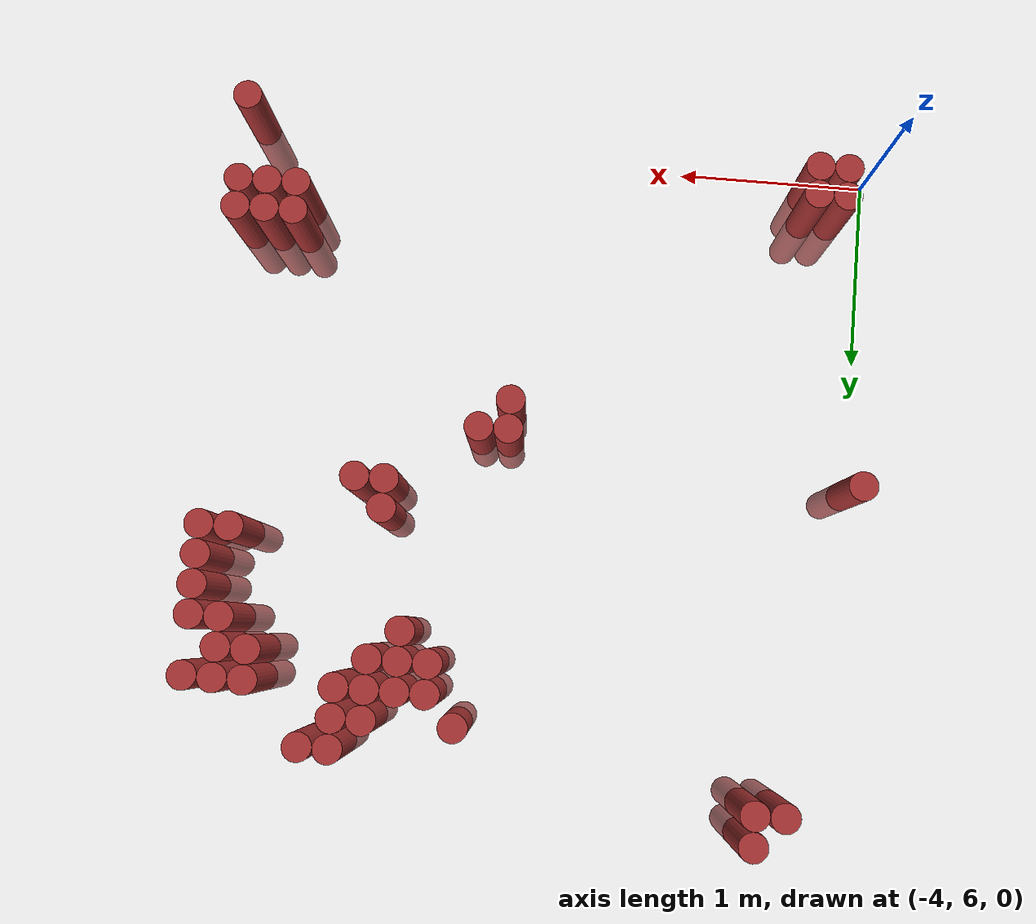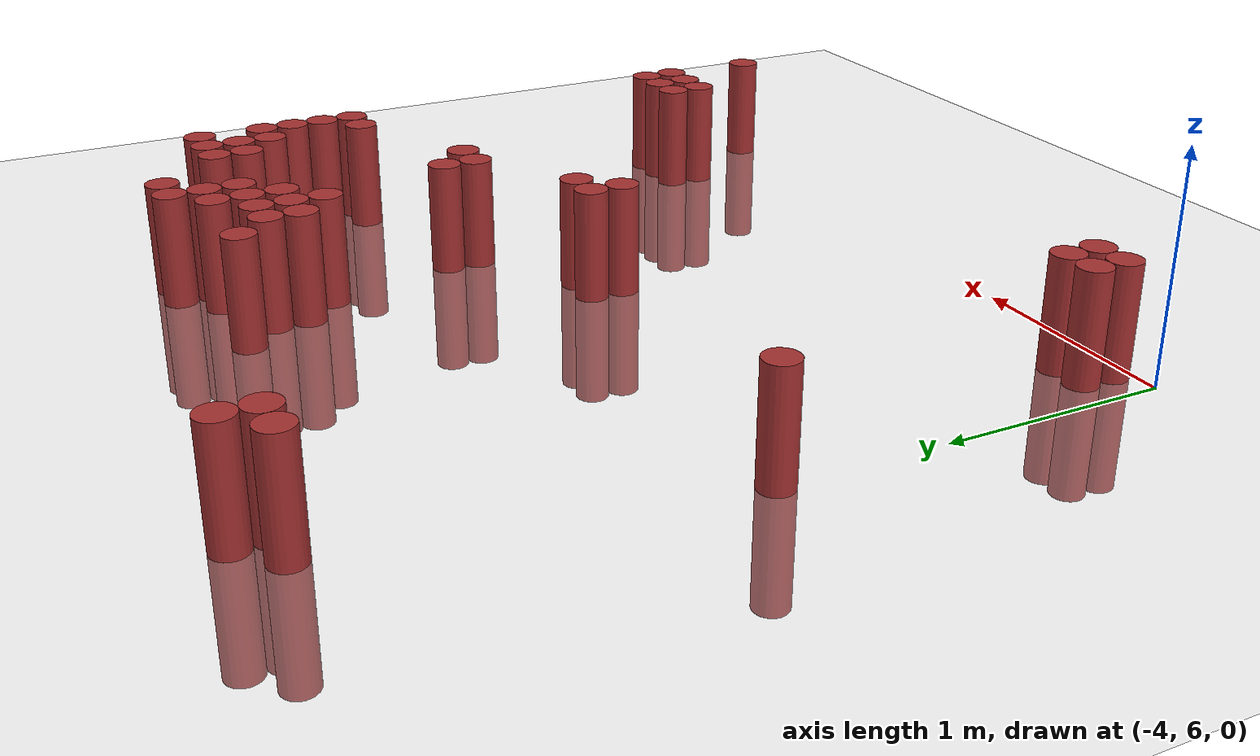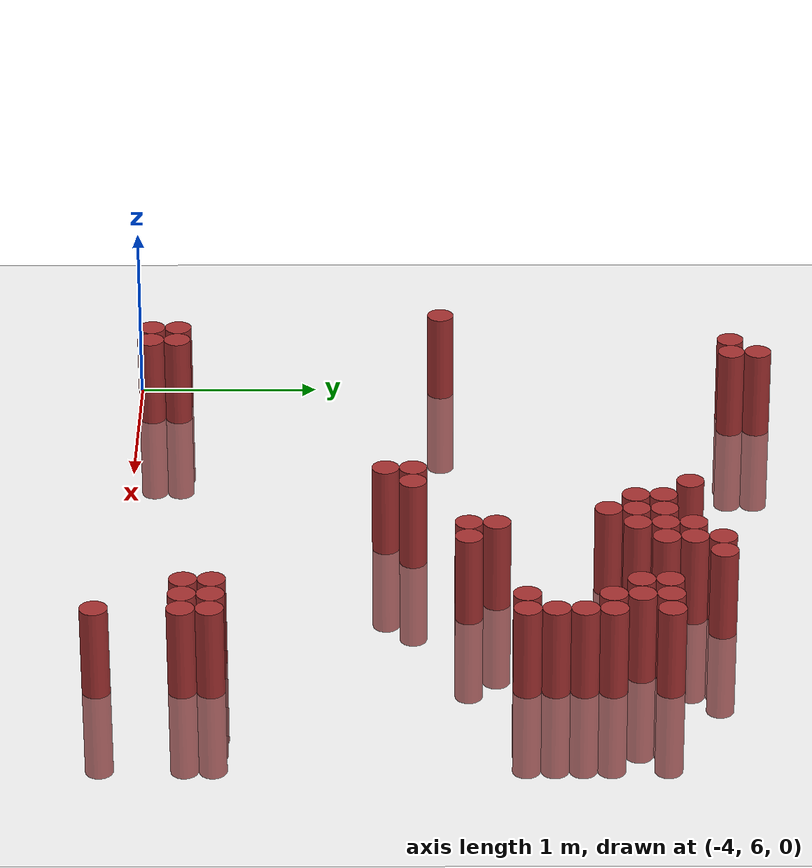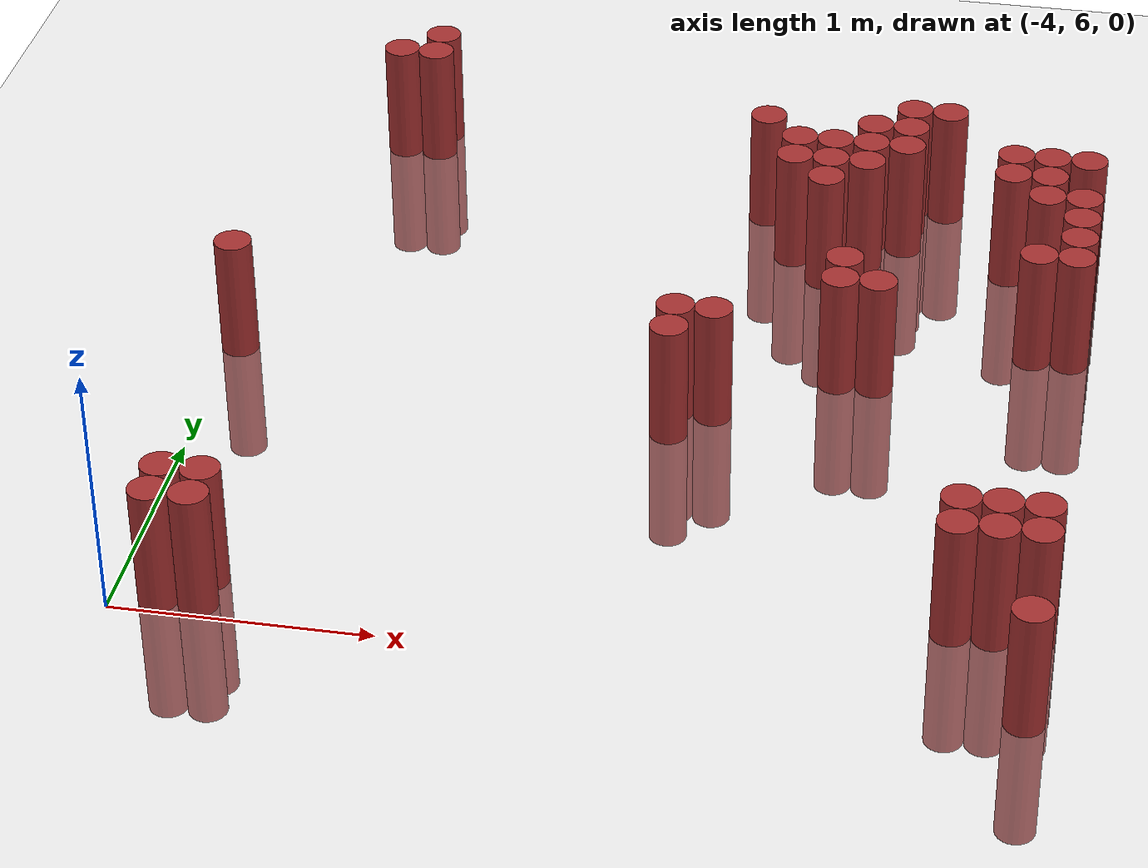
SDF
<sdf version="1.6">
 <world name="default">
  <model name="ground_plane">
   <static>1</static>
   <link name="link">
    <collision name="collision">
     <geometry><plane><normal>0 0 1</normal><size>100 100</size></plane></geometry>
     <surface><friction><ode><mu>100</mu><mu2>50</mu2></ode></friction></surface>
    </collision>
    <visual name="visual">
     <cast_shadows>0</cast_shadows>
     <geometry><plane><normal>0 0 1</normal><size>100 100</size></plane></geometry>
     <material>
      <script><uri>file://media/materials/scripts/gazebo.material</uri><name>Gazebo/Grey</name></script>
     </material>
    </visual>
   </link>
  </model>
  <model name="unit_cylinder_148">
   <static>1</static>
   <pose>-3.975000 7.725000 0.000000 0.000000 0.000000 0.000000</pose>
   <link name="link">
    <inertial>
     <mass>1</mass>
     <inertia><ixx>0.145833</ixx><ixy>0</ixy><ixz>0</ixz><iyy>0.145833</iyy><iyz>0</iyz><izz>0.125</izz></inertia>
    </inertial>
    <collision name="collision">
     <geometry><cylinder><radius>0.075000</radius><length>1</length></cylinder></geometry>
    </collision>
    <visual name="visual">
     <geometry><cylinder><radius>0.075000</radius><length>1</length></cylinder></geometry>
     <material>
      <ambient>0.648000 0.192000 0.192000 1</ambient>
      <diffuse>0.648000 0.192000 0.192000 1</diffuse>
     </material>
     <material>
      <script><name>Gazebo/Grey</name><uri>file://media/materials/scripts/gazebo.material</uri></script>
     </material>
    </visual>
   </link>
  </model>
  <model name="unit_cylinder_150">
   <static>1</static>
   <pose>-3.825000 6.075000 0.000000 0.000000 0.000000 0.000000</pose>
   <link name="link">
    <inertial>
     <mass>1</mass>
     <inertia><ixx>0.145833</ixx><ixy>0</ixy><ixz>0</ixz><iyy>0.145833</iyy><iyz>0</iyz><izz>0.125</izz></inertia>
    </inertial>
    <collision name="collision">
     <geometry><cylinder><radius>0.075000</radius><length>1</length></cylinder></geometry>
    </collision>
    <visual name="visual">
     <geometry><cylinder><radius>0.075000</radius><length>1</length></cylinder></geometry>
     <material>
      <ambient>0.648000 0.192000 0.192000 1</ambient>
      <diffuse>0.648000 0.192000 0.192000 1</diffuse>
     </material>
     <material>
      <script><name>Gazebo/Grey</name><uri>file://media/materials/scripts/gazebo.material</uri></script>
     </material>
    </visual>
   </link>
  </model>
  <model name="unit_cylinder_151">
   <static>1</static>
   <pose>-3.825000 6.225000 0.000000 0.000000 0.000000 0.000000</pose>
   <link name="link">
    <inertial>
     <mass>1</mass>
     <inertia><ixx>0.145833</ixx><ixy>0</ixy><ixz>0</ixz><iyy>0.145833</iyy><iyz>0</iyz><izz>0.125</izz></inertia>
    </inertial>
    <collision name="collision">
     <geometry><cylinder><radius>0.075000</radius><length>1</length></cylinder></geometry>
    </collision>
    <visual name="visual">
     <geometry><cylinder><radius>0.075000</radius><length>1</length></cylinder></geometry>
     <material>
      <ambient>0.648000 0.192000 0.192000 1</ambient>
      <diffuse>0.648000 0.192000 0.192000 1</diffuse>
     </material>
     <material>
      <script><name>Gazebo/Grey</name><uri>file://media/materials/scripts/gazebo.material</uri></script>
     </material>
    </visual>
   </link>
  </model>
  <model name="unit_cylinder_153">
   <static>1</static>
   <pose>-3.675000 6.075000 0.000000 0.000000 0.000000 0.000000</pose>
   <link name="link">
    <inertial>
     <mass>1</mass>
     <inertia><ixx>0.145833</ixx><ixy>0</ixy><ixz>0</ixz><iyy>0.145833</iyy><iyz>0</iyz><izz>0.125</izz></inertia>
    </inertial>
    <collision name="collision">
     <geometry><cylinder><radius>0.075000</radius><length>1</length></cylinder></geometry>
    </collision>
    <visual name="visual">
     <geometry><cylinder><radius>0.075000</radius><length>1</length></cylinder></geometry>
     <material>
      <ambient>0.648000 0.192000 0.192000 1</ambient>
      <diffuse>0.648000 0.192000 0.192000 1</diffuse>
     </material>
     <material>
      <script><name>Gazebo/Grey</name><uri>file://media/materials/scripts/gazebo.material</uri></script>
     </material>
    </visual>
   </link>
  </model>
  <model name="unit_cylinder_154">
   <static>1</static>
   <pose>-3.675000 6.225000 0.000000 0.000000 0.000000 0.000000</pose>
   <link name="link">
    <inertial>
     <mass>1</mass>
     <inertia><ixx>0.145833</ixx><ixy>0</ixy><ixz>0</ixz><iyy>0.145833</iyy><iyz>0</iyz><izz>0.125</izz></inertia>
    </inertial>
    <collision name="collision">
     <geometry><cylinder><radius>0.075000</radius><length>1</length></cylinder></geometry>
    </collision>
    <visual name="visual">
     <geometry><cylinder><radius>0.075000</radius><length>1</length></cylinder></geometry>
     <material>
      <ambient>0.648000 0.192000 0.192000 1</ambient>
      <diffuse>0.648000 0.192000 0.192000 1</diffuse>
     </material>
     <material>
      <script><name>Gazebo/Grey</name><uri>file://media/materials/scripts/gazebo.material</uri></script>
     </material>
    </visual>
   </link>
  </model>
  <model name="unit_cylinder_155">
   <static>1</static>
   <pose>-3.675000 9.375000 0.000000 0.000000 0.000000 0.000000</pose>
   <link name="link">
    <inertial>
     <mass>1</mass>
     <inertia><ixx>0.145833</ixx><ixy>0</ixy><ixz>0</ixz><iyy>0.145833</iyy><iyz>0</iyz><izz>0.125</izz></inertia>
    </inertial>
    <collision name="collision">
     <geometry><cylinder><radius>0.075000</radius><length>1</length></cylinder></geometry>
    </collision>
    <visual name="visual">
     <geometry><cylinder><radius>0.075000</radius><length>1</length></cylinder></geometry>
     <material>
      <ambient>0.648000 0.192000 0.192000 1</ambient>
      <diffuse>0.648000 0.192000 0.192000 1</diffuse>
     </material>
     <material>
      <script><name>Gazebo/Grey</name><uri>file://media/materials/scripts/gazebo.material</uri></script>
     </material>
    </visual>
   </link>
  </model>
  <model name="unit_cylinder_156">
   <static>1</static>
   <pose>-3.525000 9.375000 0.000000 0.000000 0.000000 0.000000</pose>
   <link name="link">
    <inertial>
     <mass>1</mass>
     <inertia><ixx>0.145833</ixx><ixy>0</ixy><ixz>0</ixz><iyy>0.145833</iyy><iyz>0</iyz><izz>0.125</izz></inertia>
    </inertial>
    <collision name="collision">
     <geometry><cylinder><radius>0.075000</radius><length>1</length></cylinder></geometry>
    </collision>
    <visual name="visual">
     <geometry><cylinder><radius>0.075000</radius><length>1</length></cylinder></geometry>
     <material>
      <ambient>0.648000 0.192000 0.192000 1</ambient>
      <diffuse>0.648000 0.192000 0.192000 1</diffuse>
     </material>
     <material>
      <script><name>Gazebo/Grey</name><uri>file://media/materials/scripts/gazebo.material</uri></script>
     </material>
    </visual>
   </link>
  </model>
  <model name="unit_cylinder_157">
   <static>1</static>
   <pose>-3.525000 9.525000 0.000000 0.000000 0.000000 0.000000</pose>
   <link name="link">
    <inertial>
     <mass>1</mass>
     <inertia><ixx>0.145833</ixx><ixy>0</ixy><ixz>0</ixz><iyy>0.145833</iyy><iyz>0</iyz><izz>0.125</izz></inertia>
    </inertial>
    <collision name="collision">
     <geometry><cylinder><radius>0.075000</radius><length>1</length></cylinder></geometry>
    </collision>
    <visual name="visual">
     <geometry><cylinder><radius>0.075000</radius><length>1</length></cylinder></geometry>
     <material>
      <ambient>0.648000 0.192000 0.192000 1</ambient>
      <diffuse>0.648000 0.192000 0.192000 1</diffuse>
     </material>
     <material>
      <script><name>Gazebo/Grey</name><uri>file://media/materials/scripts/gazebo.material</uri></script>
     </material>
    </visual>
   </link>
  </model>
  <model name="unit_cylinder_169">
   <static>1</static>
   <pose>-2.175000 7.425000 0.000000 0.000000 0.000000 0.000000</pose>
   <link name="link">
    <inertial>
     <mass>1</mass>
     <inertia><ixx>0.145833</ixx><ixy>0</ixy><ixz>0</ixz><iyy>0.145833</iyy><iyz>0</iyz><izz>0.125</izz></inertia>
    </inertial>
    <collision name="collision">
     <geometry><cylinder><radius>0.075000</radius><length>1</length></cylinder></geometry>
    </collision>
    <visual name="visual">
     <geometry><cylinder><radius>0.075000</radius><length>1</length></cylinder></geometry>
     <material>
      <ambient>0.648000 0.192000 0.192000 1</ambient>
      <diffuse>0.648000 0.192000 0.192000 1</diffuse>
     </material>
     <material>
      <script><name>Gazebo/Grey</name><uri>file://media/materials/scripts/gazebo.material</uri></script>
     </material>
    </visual>
   </link>
  </model>
  <model name="unit_cylinder_170">
   <static>1</static>
   <pose>-2.175000 7.575000 0.000000 0.000000 0.000000 0.000000</pose>
   <link name="link">
    <inertial>
     <mass>1</mass>
     <inertia><ixx>0.145833</ixx><ixy>0</ixy><ixz>0</ixz><iyy>0.145833</iyy><iyz>0</iyz><izz>0.125</izz></inertia>
    </inertial>
    <collision name="collision">
     <geometry><cylinder><radius>0.075000</radius><length>1</length></cylinder></geometry>
    </collision>
    <visual name="visual">
     <geometry><cylinder><radius>0.075000</radius><length>1</length></cylinder></geometry>
     <material>
      <ambient>0.648000 0.192000 0.192000 1</ambient>
      <diffuse>0.648000 0.192000 0.192000 1</diffuse>
     </material>
     <material>
      <script><name>Gazebo/Grey</name><uri>file://media/materials/scripts/gazebo.material</uri></script>
     </material>
    </visual>
   </link>
  </model>
  <model name="unit_cylinder_171">
   <static>1</static>
   <pose>-2.025000 7.575000 0.000000 0.000000 0.000000 0.000000</pose>
   <link name="link">
    <inertial>
     <mass>1</mass>
     <inertia><ixx>0.145833</ixx><ixy>0</ixy><ixz>0</ixz><iyy>0.145833</iyy><iyz>0</iyz><izz>0.125</izz></inertia>
    </inertial>
    <collision name="collision">
     <geometry><cylinder><radius>0.075000</radius><length>1</length></cylinder></geometry>
    </collision>
    <visual name="visual">
     <geometry><cylinder><radius>0.075000</radius><length>1</length></cylinder></geometry>
     <material>
      <ambient>0.648000 0.192000 0.192000 1</ambient>
      <diffuse>0.648000 0.192000 0.192000 1</diffuse>
     </material>
     <material>
      <script><name>Gazebo/Grey</name><uri>file://media/materials/scripts/gazebo.material</uri></script>
     </material>
    </visual>
   </link>
  </model>
  <model name="unit_cylinder_172">
   <static>1</static>
   <pose>-2.025000 9.075000 0.000000 0.000000 0.000000 0.000000</pose>
   <link name="link">
    <inertial>
     <mass>1</mass>
     <inertia><ixx>0.145833</ixx><ixy>0</ixy><ixz>0</ixz><iyy>0.145833</iyy><iyz>0</iyz><izz>0.125</izz></inertia>
    </inertial>
    <collision name="collision">
     <geometry><cylinder><radius>0.075000</radius><length>1</length></cylinder></geometry>
    </collision>
    <visual name="visual">
     <geometry><cylinder><radius>0.075000</radius><length>1</length></cylinder></geometry>
     <material>
      <ambient>0.648000 0.192000 0.192000 1</ambient>
      <diffuse>0.648000 0.192000 0.192000 1</diffuse>
     </material>
     <material>
      <script><name>Gazebo/Grey</name><uri>file://media/materials/scripts/gazebo.material</uri></script>
     </material>
    </visual>
   </link>
  </model>
  <model name="unit_cylinder_173">
   <static>1</static>
   <pose>-1.875000 8.775000 0.000000 0.000000 0.000000 0.000000</pose>
   <link name="link">
    <inertial>
     <mass>1</mass>
     <inertia><ixx>0.145833</ixx><ixy>0</ixy><ixz>0</ixz><iyy>0.145833</iyy><iyz>0</iyz><izz>0.125</izz></inertia>
    </inertial>
    <collision name="collision">
     <geometry><cylinder><radius>0.075000</radius><length>1</length></cylinder></geometry>
    </collision>
    <visual name="visual">
     <geometry><cylinder><radius>0.075000</radius><length>1</length></cylinder></geometry>
     <material>
      <ambient>0.648000 0.192000 0.192000 1</ambient>
      <diffuse>0.648000 0.192000 0.192000 1</diffuse>
     </material>
     <material>
      <script><name>Gazebo/Grey</name><uri>file://media/materials/scripts/gazebo.material</uri></script>
     </material>
    </visual>
   </link>
  </model>
  <model name="unit_cylinder_174">
   <static>1</static>
   <pose>-1.875000 8.925000 0.000000 0.000000 0.000000 0.000000</pose>
   <link name="link">
    <inertial>
     <mass>1</mass>
     <inertia><ixx>0.145833</ixx><ixy>0</ixy><ixz>0</ixz><iyy>0.145833</iyy><iyz>0</iyz><izz>0.125</izz></inertia>
    </inertial>
    <collision name="collision">
     <geometry><cylinder><radius>0.075000</radius><length>1</length></cylinder></geometry>
    </collision>
    <visual name="visual">
     <geometry><cylinder><radius>0.075000</radius><length>1</length></cylinder></geometry>
     <material>
      <ambient>0.648000 0.192000 0.192000 1</ambient>
      <diffuse>0.648000 0.192000 0.192000 1</diffuse>
     </material>
     <material>
      <script><name>Gazebo/Grey</name><uri>file://media/materials/scripts/gazebo.material</uri></script>
     </material>
    </visual>
   </link>
  </model>
  <model name="unit_cylinder_175">
   <static>1</static>
   <pose>-1.725000 8.625000 0.000000 0.000000 0.000000 0.000000</pose>
   <link name="link">
    <inertial>
     <mass>1</mass>
     <inertia><ixx>0.145833</ixx><ixy>0</ixy><ixz>0</ixz><iyy>0.145833</iyy><iyz>0</iyz><izz>0.125</izz></inertia>
    </inertial>
    <collision name="collision">
     <geometry><cylinder><radius>0.075000</radius><length>1</length></cylinder></geometry>
    </collision>
    <visual name="visual">
     <geometry><cylinder><radius>0.075000</radius><length>1</length></cylinder></geometry>
     <material>
      <ambient>0.648000 0.192000 0.192000 1</ambient>
      <diffuse>0.648000 0.192000 0.192000 1</diffuse>
     </material>
     <material>
      <script><name>Gazebo/Grey</name><uri>file://media/materials/scripts/gazebo.material</uri></script>
     </material>
    </visual>
   </link>
  </model>
  <model name="unit_cylinder_176">
   <static>1</static>
   <pose>-1.725000 8.775000 0.000000 0.000000 0.000000 0.000000</pose>
   <link name="link">
    <inertial>
     <mass>1</mass>
     <inertia><ixx>0.145833</ixx><ixy>0</ixy><ixz>0</ixz><iyy>0.145833</iyy><iyz>0</iyz><izz>0.125</izz></inertia>
    </inertial>
    <collision name="collision">
     <geometry><cylinder><radius>0.075000</radius><length>1</length></cylinder></geometry>
    </collision>
    <visual name="visual">
     <geometry><cylinder><radius>0.075000</radius><length>1</length></cylinder></geometry>
     <material>
      <ambient>0.648000 0.192000 0.192000 1</ambient>
      <diffuse>0.648000 0.192000 0.192000 1</diffuse>
     </material>
     <material>
      <script><name>Gazebo/Grey</name><uri>file://media/materials/scripts/gazebo.material</uri></script>
     </material>
    </visual>
   </link>
  </model>
  <model name="unit_cylinder_177">
   <static>1</static>
   <pose>-1.725000 8.925000 0.000000 0.000000 0.000000 0.000000</pose>
   <link name="link">
    <inertial>
     <mass>1</mass>
     <inertia><ixx>0.145833</ixx><ixy>0</ixy><ixz>0</ixz><iyy>0.145833</iyy><iyz>0</iyz><izz>0.125</izz></inertia>
    </inertial>
    <collision name="collision">
     <geometry><cylinder><radius>0.075000</radius><length>1</length></cylinder></geometry>
    </collision>
    <visual name="visual">
     <geometry><cylinder><radius>0.075000</radius><length>1</length></cylinder></geometry>
     <material>
      <ambient>0.648000 0.192000 0.192000 1</ambient>
      <diffuse>0.648000 0.192000 0.192000 1</diffuse>
     </material>
     <material>
      <script><name>Gazebo/Grey</name><uri>file://media/materials/scripts/gazebo.material</uri></script>
     </material>
    </visual>
   </link>
  </model>
  <model name="unit_cylinder_180">
   <static>1</static>
   <pose>-1.575000 7.875000 0.000000 0.000000 0.000000 0.000000</pose>
   <link name="link">
    <inertial>
     <mass>1</mass>
     <inertia><ixx>0.145833</ixx><ixy>0</ixy><ixz>0</ixz><iyy>0.145833</iyy><iyz>0</iyz><izz>0.125</izz></inertia>
    </inertial>
    <collision name="collision">
     <geometry><cylinder><radius>0.075000</radius><length>1</length></cylinder></geometry>
    </collision>
    <visual name="visual">
     <geometry><cylinder><radius>0.075000</radius><length>1</length></cylinder></geometry>
     <material>
      <ambient>0.648000 0.192000 0.192000 1</ambient>
      <diffuse>0.648000 0.192000 0.192000 1</diffuse>
     </material>
     <material>
      <script><name>Gazebo/Grey</name><uri>file://media/materials/scripts/gazebo.material</uri></script>
     </material>
    </visual>
   </link>
  </model>
  <model name="unit_cylinder_181">
   <static>1</static>
   <pose>-1.575000 8.025000 0.000000 0.000000 0.000000 0.000000</pose>
   <link name="link">
    <inertial>
     <mass>1</mass>
     <inertia><ixx>0.145833</ixx><ixy>0</ixy><ixz>0</ixz><iyy>0.145833</iyy><iyz>0</iyz><izz>0.125</izz></inertia>
    </inertial>
    <collision name="collision">
     <geometry><cylinder><radius>0.075000</radius><length>1</length></cylinder></geometry>
    </collision>
    <visual name="visual">
     <geometry><cylinder><radius>0.075000</radius><length>1</length></cylinder></geometry>
     <material>
      <ambient>0.648000 0.192000 0.192000 1</ambient>
      <diffuse>0.648000 0.192000 0.192000 1</diffuse>
     </material>
     <material>
      <script><name>Gazebo/Grey</name><uri>file://media/materials/scripts/gazebo.material</uri></script>
     </material>
    </visual>
   </link>
  </model>
  <model name="unit_cylinder_182">
   <static>1</static>
   <pose>-1.575000 8.775000 0.000000 0.000000 0.000000 0.000000</pose>
   <link name="link">
    <inertial>
     <mass>1</mass>
     <inertia><ixx>0.145833</ixx><ixy>0</ixy><ixz>0</ixz><iyy>0.145833</iyy><iyz>0</iyz><izz>0.125</izz></inertia>
    </inertial>
    <collision name="collision">
     <geometry><cylinder><radius>0.075000</radius><length>1</length></cylinder></geometry>
    </collision>
    <visual name="visual">
     <geometry><cylinder><radius>0.075000</radius><length>1</length></cylinder></geometry>
     <material>
      <ambient>0.648000 0.192000 0.192000 1</ambient>
      <diffuse>0.648000 0.192000 0.192000 1</diffuse>
     </material>
     <material>
      <script><name>Gazebo/Grey</name><uri>file://media/materials/scripts/gazebo.material</uri></script>
     </material>
    </visual>
   </link>
  </model>
  <model name="unit_cylinder_183">
   <static>1</static>
   <pose>-1.575000 8.925000 0.000000 0.000000 0.000000 0.000000</pose>
   <link name="link">
    <inertial>
     <mass>1</mass>
     <inertia><ixx>0.145833</ixx><ixy>0</ixy><ixz>0</ixz><iyy>0.145833</iyy><iyz>0</iyz><izz>0.125</izz></inertia>
    </inertial>
    <collision name="collision">
     <geometry><cylinder><radius>0.075000</radius><length>1</length></cylinder></geometry>
    </collision>
    <visual name="visual">
     <geometry><cylinder><radius>0.075000</radius><length>1</length></cylinder></geometry>
     <material>
      <ambient>0.648000 0.192000 0.192000 1</ambient>
      <diffuse>0.648000 0.192000 0.192000 1</diffuse>
     </material>
     <material>
      <script><name>Gazebo/Grey</name><uri>file://media/materials/scripts/gazebo.material</uri></script>
     </material>
    </visual>
   </link>
  </model>
  <model name="unit_cylinder_184">
   <static>1</static>
   <pose>-1.575000 9.075000 0.000000 0.000000 0.000000 0.000000</pose>
   <link name="link">
    <inertial>
     <mass>1</mass>
     <inertia><ixx>0.145833</ixx><ixy>0</ixy><ixz>0</ixz><iyy>0.145833</iyy><iyz>0</iyz><izz>0.125</izz></inertia>
    </inertial>
    <collision name="collision">
     <geometry><cylinder><radius>0.075000</radius><length>1</length></cylinder></geometry>
    </collision>
    <visual name="visual">
     <geometry><cylinder><radius>0.075000</radius><length>1</length></cylinder></geometry>
     <material>
      <ambient>0.648000 0.192000 0.192000 1</ambient>
      <diffuse>0.648000 0.192000 0.192000 1</diffuse>
     </material>
     <material>
      <script><name>Gazebo/Grey</name><uri>file://media/materials/scripts/gazebo.material</uri></script>
     </material>
    </visual>
   </link>
  </model>
  <model name="unit_cylinder_186">
   <static>1</static>
   <pose>-1.425000 7.875000 0.000000 0.000000 0.000000 0.000000</pose>
   <link name="link">
    <inertial>
     <mass>1</mass>
     <inertia><ixx>0.145833</ixx><ixy>0</ixy><ixz>0</ixz><iyy>0.145833</iyy><iyz>0</iyz><izz>0.125</izz></inertia>
    </inertial>
    <collision name="collision">
     <geometry><cylinder><radius>0.075000</radius><length>1</length></cylinder></geometry>
    </collision>
    <visual name="visual">
     <geometry><cylinder><radius>0.075000</radius><length>1</length></cylinder></geometry>
     <material>
      <ambient>0.648000 0.192000 0.192000 1</ambient>
      <diffuse>0.648000 0.192000 0.192000 1</diffuse>
     </material>
     <material>
      <script><name>Gazebo/Grey</name><uri>file://media/materials/scripts/gazebo.material</uri></script>
     </material>
    </visual>
   </link>
  </model>
  <model name="unit_cylinder_187">
   <static>1</static>
   <pose>-1.425000 8.925000 0.000000 0.000000 0.000000 0.000000</pose>
   <link name="link">
    <inertial>
     <mass>1</mass>
     <inertia><ixx>0.145833</ixx><ixy>0</ixy><ixz>0</ixz><iyy>0.145833</iyy><iyz>0</iyz><izz>0.125</izz></inertia>
    </inertial>
    <collision name="collision">
     <geometry><cylinder><radius>0.075000</radius><length>1</length></cylinder></geometry>
    </collision>
    <visual name="visual">
     <geometry><cylinder><radius>0.075000</radius><length>1</length></cylinder></geometry>
     <material>
      <ambient>0.648000 0.192000 0.192000 1</ambient>
      <diffuse>0.648000 0.192000 0.192000 1</diffuse>
     </material>
     <material>
      <script><name>Gazebo/Grey</name><uri>file://media/materials/scripts/gazebo.material</uri></script>
     </material>
    </visual>
   </link>
  </model>
  <model name="unit_cylinder_188">
   <static>1</static>
   <pose>-1.425000 9.075000 0.000000 0.000000 0.000000 0.000000</pose>
   <link name="link">
    <inertial>
     <mass>1</mass>
     <inertia><ixx>0.145833</ixx><ixy>0</ixy><ixz>0</ixz><iyy>0.145833</iyy><iyz>0</iyz><izz>0.125</izz></inertia>
    </inertial>
    <collision name="collision">
     <geometry><cylinder><radius>0.075000</radius><length>1</length></cylinder></geometry>
    </collision>
    <visual name="visual">
     <geometry><cylinder><radius>0.075000</radius><length>1</length></cylinder></geometry>
     <material>
      <ambient>0.648000 0.192000 0.192000 1</ambient>
      <diffuse>0.648000 0.192000 0.192000 1</diffuse>
     </material>
     <material>
      <script><name>Gazebo/Grey</name><uri>file://media/materials/scripts/gazebo.material</uri></script>
     </material>
    </visual>
   </link>
  </model>
  <model name="unit_cylinder_189">
   <static>1</static>
   <pose>-1.425000 9.225000 0.000000 0.000000 0.000000 0.000000</pose>
   <link name="link">
    <inertial>
     <mass>1</mass>
     <inertia><ixx>0.145833</ixx><ixy>0</ixy><ixz>0</ixz><iyy>0.145833</iyy><iyz>0</iyz><izz>0.125</izz></inertia>
    </inertial>
    <collision name="collision">
     <geometry><cylinder><radius>0.075000</radius><length>1</length></cylinder></geometry>
    </collision>
    <visual name="visual">
     <geometry><cylinder><radius>0.075000</radius><length>1</length></cylinder></geometry>
     <material>
      <ambient>0.648000 0.192000 0.192000 1</ambient>
      <diffuse>0.648000 0.192000 0.192000 1</diffuse>
     </material>
     <material>
      <script><name>Gazebo/Grey</name><uri>file://media/materials/scripts/gazebo.material</uri></script>
     </material>
    </visual>
   </link>
  </model>
  <model name="unit_cylinder_190">
   <static>1</static>
   <pose>-1.275000 9.225000 0.000000 0.000000 0.000000 0.000000</pose>
   <link name="link">
    <inertial>
     <mass>1</mass>
     <inertia><ixx>0.145833</ixx><ixy>0</ixy><ixz>0</ixz><iyy>0.145833</iyy><iyz>0</iyz><izz>0.125</izz></inertia>
    </inertial>
    <collision name="collision">
     <geometry><cylinder><radius>0.075000</radius><length>1</length></cylinder></geometry>
    </collision>
    <visual name="visual">
     <geometry><cylinder><radius>0.075000</radius><length>1</length></cylinder></geometry>
     <material>
      <ambient>0.648000 0.192000 0.192000 1</ambient>
      <diffuse>0.648000 0.192000 0.192000 1</diffuse>
     </material>
     <material>
      <script><name>Gazebo/Grey</name><uri>file://media/materials/scripts/gazebo.material</uri></script>
     </material>
    </visual>
   </link>
  </model>
  <model name="unit_cylinder_192">
   <static>1</static>
   <pose>-0.975000 6.375000 0.000000 0.000000 0.000000 0.000000</pose>
   <link name="link">
    <inertial>
     <mass>1</mass>
     <inertia><ixx>0.145833</ixx><ixy>0</ixy><ixz>0</ixz><iyy>0.145833</iyy><iyz>0</iyz><izz>0.125</izz></inertia>
    </inertial>
    <collision name="collision">
     <geometry><cylinder><radius>0.075000</radius><length>1</length></cylinder></geometry>
    </collision>
    <visual name="visual">
     <geometry><cylinder><radius>0.075000</radius><length>1</length></cylinder></geometry>
     <material>
      <ambient>0.648000 0.192000 0.192000 1</ambient>
      <diffuse>0.648000 0.192000 0.192000 1</diffuse>
     </material>
     <material>
      <script><name>Gazebo/Grey</name><uri>file://media/materials/scripts/gazebo.material</uri></script>
     </material>
    </visual>
   </link>
  </model>
  <model name="unit_cylinder_193">
   <static>1</static>
   <pose>-0.975000 6.525000 0.000000 0.000000 0.000000 0.000000</pose>
   <link name="link">
    <inertial>
     <mass>1</mass>
     <inertia><ixx>0.145833</ixx><ixy>0</ixy><ixz>0</ixz><iyy>0.145833</iyy><iyz>0</iyz><izz>0.125</izz></inertia>
    </inertial>
    <collision name="collision">
     <geometry><cylinder><radius>0.075000</radius><length>1</length></cylinder></geometry>
    </collision>
    <visual name="visual">
     <geometry><cylinder><radius>0.075000</radius><length>1</length></cylinder></geometry>
     <material>
      <ambient>0.648000 0.192000 0.192000 1</ambient>
      <diffuse>0.648000 0.192000 0.192000 1</diffuse>
     </material>
     <material>
      <script><name>Gazebo/Grey</name><uri>file://media/materials/scripts/gazebo.material</uri></script>
     </material>
    </visual>
   </link>
  </model>
  <model name="unit_cylinder_194">
   <static>1</static>
   <pose>-0.975000 8.775000 0.000000 0.000000 0.000000 0.000000</pose>
   <link name="link">
    <inertial>
     <mass>1</mass>
     <inertia><ixx>0.145833</ixx><ixy>0</ixy><ixz>0</ixz><iyy>0.145833</iyy><iyz>0</iyz><izz>0.125</izz></inertia>
    </inertial>
    <collision name="collision">
     <geometry><cylinder><radius>0.075000</radius><length>1</length></cylinder></geometry>
    </collision>
    <visual name="visual">
     <geometry><cylinder><radius>0.075000</radius><length>1</length></cylinder></geometry>
     <material>
      <ambient>0.648000 0.192000 0.192000 1</ambient>
      <diffuse>0.648000 0.192000 0.192000 1</diffuse>
     </material>
     <material>
      <script><name>Gazebo/Grey</name><uri>file://media/materials/scripts/gazebo.material</uri></script>
     </material>
    </visual>
   </link>
  </model>
  <model name="unit_cylinder_195">
   <static>1</static>
   <pose>-0.975000 8.925000 0.000000 0.000000 0.000000 0.000000</pose>
   <link name="link">
    <inertial>
     <mass>1</mass>
     <inertia><ixx>0.145833</ixx><ixy>0</ixy><ixz>0</ixz><iyy>0.145833</iyy><iyz>0</iyz><izz>0.125</izz></inertia>
    </inertial>
    <collision name="collision">
     <geometry><cylinder><radius>0.075000</radius><length>1</length></cylinder></geometry>
    </collision>
    <visual name="visual">
     <geometry><cylinder><radius>0.075000</radius><length>1</length></cylinder></geometry>
     <material>
      <ambient>0.648000 0.192000 0.192000 1</ambient>
      <diffuse>0.648000 0.192000 0.192000 1</diffuse>
     </material>
     <material>
      <script><name>Gazebo/Grey</name><uri>file://media/materials/scripts/gazebo.material</uri></script>
     </material>
    </visual>
   </link>
  </model>
  <model name="unit_cylinder_198">
   <static>1</static>
   <pose>-0.825000 6.375000 0.000000 0.000000 0.000000 0.000000</pose>
   <link name="link">
    <inertial>
     <mass>1</mass>
     <inertia><ixx>0.145833</ixx><ixy>0</ixy><ixz>0</ixz><iyy>0.145833</iyy><iyz>0</iyz><izz>0.125</izz></inertia>
    </inertial>
    <collision name="collision">
     <geometry><cylinder><radius>0.075000</radius><length>1</length></cylinder></geometry>
    </collision>
    <visual name="visual">
     <geometry><cylinder><radius>0.075000</radius><length>1</length></cylinder></geometry>
     <material>
      <ambient>0.648000 0.192000 0.192000 1</ambient>
      <diffuse>0.648000 0.192000 0.192000 1</diffuse>
     </material>
     <material>
      <script><name>Gazebo/Grey</name><uri>file://media/materials/scripts/gazebo.material</uri></script>
     </material>
    </visual>
   </link>
  </model>
  <model name="unit_cylinder_199">
   <static>1</static>
   <pose>-0.825000 6.525000 0.000000 0.000000 0.000000 0.000000</pose>
   <link name="link">
    <inertial>
     <mass>1</mass>
     <inertia><ixx>0.145833</ixx><ixy>0</ixy><ixz>0</ixz><iyy>0.145833</iyy><iyz>0</iyz><izz>0.125</izz></inertia>
    </inertial>
    <collision name="collision">
     <geometry><cylinder><radius>0.075000</radius><length>1</length></cylinder></geometry>
    </collision>
    <visual name="visual">
     <geometry><cylinder><radius>0.075000</radius><length>1</length></cylinder></geometry>
     <material>
      <ambient>0.648000 0.192000 0.192000 1</ambient>
      <diffuse>0.648000 0.192000 0.192000 1</diffuse>
     </material>
     <material>
      <script><name>Gazebo/Grey</name><uri>file://media/materials/scripts/gazebo.material</uri></script>
     </material>
    </visual>
   </link>
  </model>
  <model name="unit_cylinder_200">
   <static>1</static>
   <pose>-0.825000 8.175000 0.000000 0.000000 0.000000 0.000000</pose>
   <link name="link">
    <inertial>
     <mass>1</mass>
     <inertia><ixx>0.145833</ixx><ixy>0</ixy><ixz>0</ixz><iyy>0.145833</iyy><iyz>0</iyz><izz>0.125</izz></inertia>
    </inertial>
    <collision name="collision">
     <geometry><cylinder><radius>0.075000</radius><length>1</length></cylinder></geometry>
    </collision>
    <visual name="visual">
     <geometry><cylinder><radius>0.075000</radius><length>1</length></cylinder></geometry>
     <material>
      <ambient>0.648000 0.192000 0.192000 1</ambient>
      <diffuse>0.648000 0.192000 0.192000 1</diffuse>
     </material>
     <material>
      <script><name>Gazebo/Grey</name><uri>file://media/materials/scripts/gazebo.material</uri></script>
     </material>
    </visual>
   </link>
  </model>
  <model name="unit_cylinder_201">
   <static>1</static>
   <pose>-0.825000 8.625000 0.000000 0.000000 0.000000 0.000000</pose>
   <link name="link">
    <inertial>
     <mass>1</mass>
     <inertia><ixx>0.145833</ixx><ixy>0</ixy><ixz>0</ixz><iyy>0.145833</iyy><iyz>0</iyz><izz>0.125</izz></inertia>
    </inertial>
    <collision name="collision">
     <geometry><cylinder><radius>0.075000</radius><length>1</length></cylinder></geometry>
    </collision>
    <visual name="visual">
     <geometry><cylinder><radius>0.075000</radius><length>1</length></cylinder></geometry>
     <material>
      <ambient>0.648000 0.192000 0.192000 1</ambient>
      <diffuse>0.648000 0.192000 0.192000 1</diffuse>
     </material>
     <material>
      <script><name>Gazebo/Grey</name><uri>file://media/materials/scripts/gazebo.material</uri></script>
     </material>
    </visual>
   </link>
  </model>
  <model name="unit_cylinder_202">
   <static>1</static>
   <pose>-0.825000 8.775000 0.000000 0.000000 0.000000 0.000000</pose>
   <link name="link">
    <inertial>
     <mass>1</mass>
     <inertia><ixx>0.145833</ixx><ixy>0</ixy><ixz>0</ixz><iyy>0.145833</iyy><iyz>0</iyz><izz>0.125</izz></inertia>
    </inertial>
    <collision name="collision">
     <geometry><cylinder><radius>0.075000</radius><length>1</length></cylinder></geometry>
    </collision>
    <visual name="visual">
     <geometry><cylinder><radius>0.075000</radius><length>1</length></cylinder></geometry>
     <material>
      <ambient>0.648000 0.192000 0.192000 1</ambient>
      <diffuse>0.648000 0.192000 0.192000 1</diffuse>
     </material>
     <material>
      <script><name>Gazebo/Grey</name><uri>file://media/materials/scripts/gazebo.material</uri></script>
     </material>
    </visual>
   </link>
  </model>
  <model name="unit_cylinder_203">
   <static>1</static>
   <pose>-0.825000 8.925000 0.000000 0.000000 0.000000 0.000000</pose>
   <link name="link">
    <inertial>
     <mass>1</mass>
     <inertia><ixx>0.145833</ixx><ixy>0</ixy><ixz>0</ixz><iyy>0.145833</iyy><iyz>0</iyz><izz>0.125</izz></inertia>
    </inertial>
    <collision name="collision">
     <geometry><cylinder><radius>0.075000</radius><length>1</length></cylinder></geometry>
    </collision>
    <visual name="visual">
     <geometry><cylinder><radius>0.075000</radius><length>1</length></cylinder></geometry>
     <material>
      <ambient>0.648000 0.192000 0.192000 1</ambient>
      <diffuse>0.648000 0.192000 0.192000 1</diffuse>
     </material>
     <material>
      <script><name>Gazebo/Grey</name><uri>file://media/materials/scripts/gazebo.material</uri></script>
     </material>
    </visual>
   </link>
  </model>
  <model name="unit_cylinder_208">
   <static>1</static>
   <pose>-0.675000 5.925000 0.000000 0.000000 0.000000 0.000000</pose>
   <link name="link">
    <inertial>
     <mass>1</mass>
     <inertia><ixx>0.145833</ixx><ixy>0</ixy><ixz>0</ixz><iyy>0.145833</iyy><iyz>0</iyz><izz>0.125</izz></inertia>
    </inertial>
    <collision name="collision">
     <geometry><cylinder><radius>0.075000</radius><length>1</length></cylinder></geometry>
    </collision>
    <visual name="visual">
     <geometry><cylinder><radius>0.075000</radius><length>1</length></cylinder></geometry>
     <material>
      <ambient>0.648000 0.192000 0.192000 1</ambient>
      <diffuse>0.648000 0.192000 0.192000 1</diffuse>
     </material>
     <material>
      <script><name>Gazebo/Grey</name><uri>file://media/materials/scripts/gazebo.material</uri></script>
     </material>
    </visual>
   </link>
  </model>
  <model name="unit_cylinder_209">
   <static>1</static>
   <pose>-0.675000 6.375000 0.000000 0.000000 0.000000 0.000000</pose>
   <link name="link">
    <inertial>
     <mass>1</mass>
     <inertia><ixx>0.145833</ixx><ixy>0</ixy><ixz>0</ixz><iyy>0.145833</iyy><iyz>0</iyz><izz>0.125</izz></inertia>
    </inertial>
    <collision name="collision">
     <geometry><cylinder><radius>0.075000</radius><length>1</length></cylinder></geometry>
    </collision>
    <visual name="visual">
     <geometry><cylinder><radius>0.075000</radius><length>1</length></cylinder></geometry>
     <material>
      <ambient>0.648000 0.192000 0.192000 1</ambient>
      <diffuse>0.648000 0.192000 0.192000 1</diffuse>
     </material>
     <material>
      <script><name>Gazebo/Grey</name><uri>file://media/materials/scripts/gazebo.material</uri></script>
     </material>
    </visual>
   </link>
  </model>
  <model name="unit_cylinder_210">
   <static>1</static>
   <pose>-0.675000 6.525000 0.000000 0.000000 0.000000 0.000000</pose>
   <link name="link">
    <inertial>
     <mass>1</mass>
     <inertia><ixx>0.145833</ixx><ixy>0</ixy><ixz>0</ixz><iyy>0.145833</iyy><iyz>0</iyz><izz>0.125</izz></inertia>
    </inertial>
    <collision name="collision">
     <geometry><cylinder><radius>0.075000</radius><length>1</length></cylinder></geometry>
    </collision>
    <visual name="visual">
     <geometry><cylinder><radius>0.075000</radius><length>1</length></cylinder></geometry>
     <material>
      <ambient>0.648000 0.192000 0.192000 1</ambient>
      <diffuse>0.648000 0.192000 0.192000 1</diffuse>
     </material>
     <material>
      <script><name>Gazebo/Grey</name><uri>file://media/materials/scripts/gazebo.material</uri></script>
     </material>
    </visual>
   </link>
  </model>
  <model name="unit_cylinder_211">
   <static>1</static>
   <pose>-0.675000 8.175000 0.000000 0.000000 0.000000 0.000000</pose>
   <link name="link">
    <inertial>
     <mass>1</mass>
     <inertia><ixx>0.145833</ixx><ixy>0</ixy><ixz>0</ixz><iyy>0.145833</iyy><iyz>0</iyz><izz>0.125</izz></inertia>
    </inertial>
    <collision name="collision">
     <geometry><cylinder><radius>0.075000</radius><length>1</length></cylinder></geometry>
    </collision>
    <visual name="visual">
     <geometry><cylinder><radius>0.075000</radius><length>1</length></cylinder></geometry>
     <material>
      <ambient>0.648000 0.192000 0.192000 1</ambient>
      <diffuse>0.648000 0.192000 0.192000 1</diffuse>
     </material>
     <material>
      <script><name>Gazebo/Grey</name><uri>file://media/materials/scripts/gazebo.material</uri></script>
     </material>
    </visual>
   </link>
  </model>
  <model name="unit_cylinder_212">
   <static>1</static>
   <pose>-0.675000 8.325000 0.000000 0.000000 0.000000 0.000000</pose>
   <link name="link">
    <inertial>
     <mass>1</mass>
     <inertia><ixx>0.145833</ixx><ixy>0</ixy><ixz>0</ixz><iyy>0.145833</iyy><iyz>0</iyz><izz>0.125</izz></inertia>
    </inertial>
    <collision name="collision">
     <geometry><cylinder><radius>0.075000</radius><length>1</length></cylinder></geometry>
    </collision>
    <visual name="visual">
     <geometry><cylinder><radius>0.075000</radius><length>1</length></cylinder></geometry>
     <material>
      <ambient>0.648000 0.192000 0.192000 1</ambient>
      <diffuse>0.648000 0.192000 0.192000 1</diffuse>
     </material>
     <material>
      <script><name>Gazebo/Grey</name><uri>file://media/materials/scripts/gazebo.material</uri></script>
     </material>
    </visual>
   </link>
  </model>
  <model name="unit_cylinder_213">
   <static>1</static>
   <pose>-0.675000 8.475000 0.000000 0.000000 0.000000 0.000000</pose>
   <link name="link">
    <inertial>
     <mass>1</mass>
     <inertia><ixx>0.145833</ixx><ixy>0</ixy><ixz>0</ixz><iyy>0.145833</iyy><iyz>0</iyz><izz>0.125</izz></inertia>
    </inertial>
    <collision name="collision">
     <geometry><cylinder><radius>0.075000</radius><length>1</length></cylinder></geometry>
    </collision>
    <visual name="visual">
     <geometry><cylinder><radius>0.075000</radius><length>1</length></cylinder></geometry>
     <material>
      <ambient>0.648000 0.192000 0.192000 1</ambient>
      <diffuse>0.648000 0.192000 0.192000 1</diffuse>
     </material>
     <material>
      <script><name>Gazebo/Grey</name><uri>file://media/materials/scripts/gazebo.material</uri></script>
     </material>
    </visual>
   </link>
  </model>
  <model name="unit_cylinder_214">
   <static>1</static>
   <pose>-0.675000 8.625000 0.000000 0.000000 0.000000 0.000000</pose>
   <link name="link">
    <inertial>
     <mass>1</mass>
     <inertia><ixx>0.145833</ixx><ixy>0</ixy><ixz>0</ixz><iyy>0.145833</iyy><iyz>0</iyz><izz>0.125</izz></inertia>
    </inertial>
    <collision name="collision">
     <geometry><cylinder><radius>0.075000</radius><length>1</length></cylinder></geometry>
    </collision>
    <visual name="visual">
     <geometry><cylinder><radius>0.075000</radius><length>1</length></cylinder></geometry>
     <material>
      <ambient>0.648000 0.192000 0.192000 1</ambient>
      <diffuse>0.648000 0.192000 0.192000 1</diffuse>
     </material>
     <material>
      <script><name>Gazebo/Grey</name><uri>file://media/materials/scripts/gazebo.material</uri></script>
     </material>
    </visual>
   </link>
  </model>
  <model name="unit_cylinder_215">
   <static>1</static>
   <pose>-0.675000 8.925000 0.000000 0.000000 0.000000 0.000000</pose>
   <link name="link">
    <inertial>
     <mass>1</mass>
     <inertia><ixx>0.145833</ixx><ixy>0</ixy><ixz>0</ixz><iyy>0.145833</iyy><iyz>0</iyz><izz>0.125</izz></inertia>
    </inertial>
    <collision name="collision">
     <geometry><cylinder><radius>0.075000</radius><length>1</length></cylinder></geometry>
    </collision>
    <visual name="visual">
     <geometry><cylinder><radius>0.075000</radius><length>1</length></cylinder></geometry>
     <material>
      <ambient>0.648000 0.192000 0.192000 1</ambient>
      <diffuse>0.648000 0.192000 0.192000 1</diffuse>
     </material>
     <material>
      <script><name>Gazebo/Grey</name><uri>file://media/materials/scripts/gazebo.material</uri></script>
     </material>
    </visual>
   </link>
  </model>
 </world>
</sdf>
